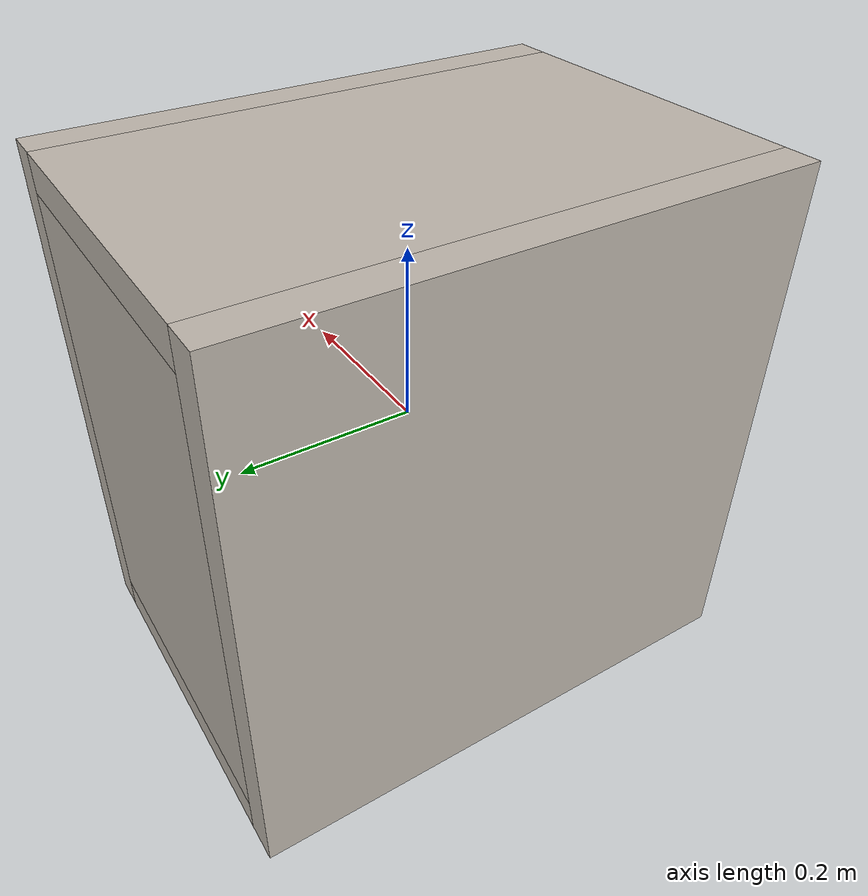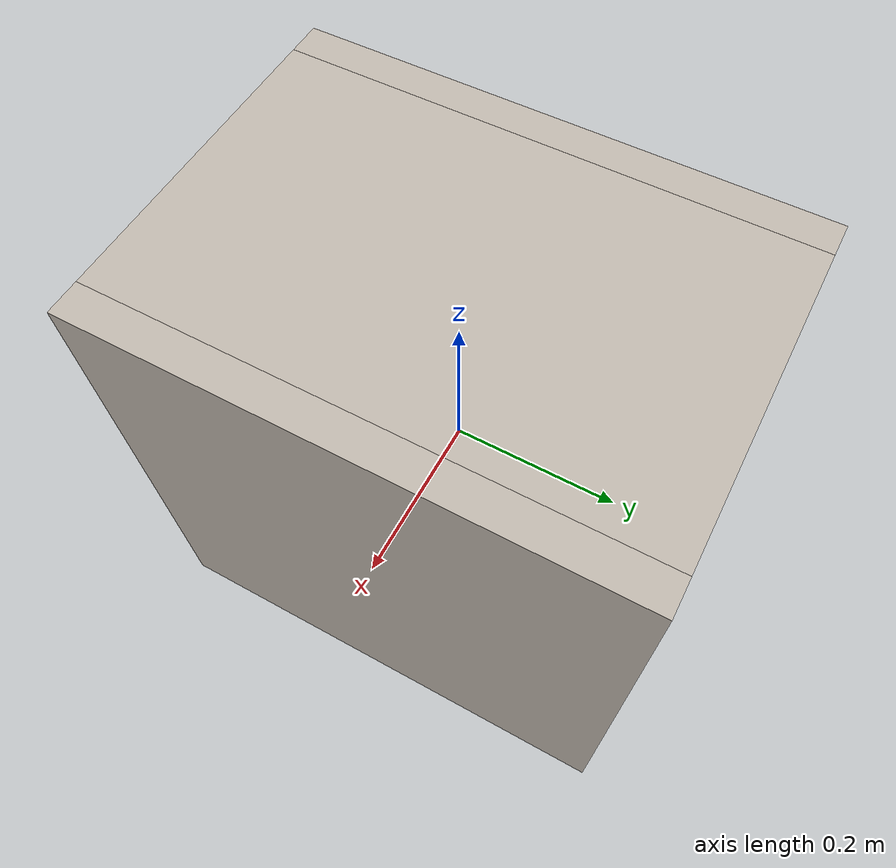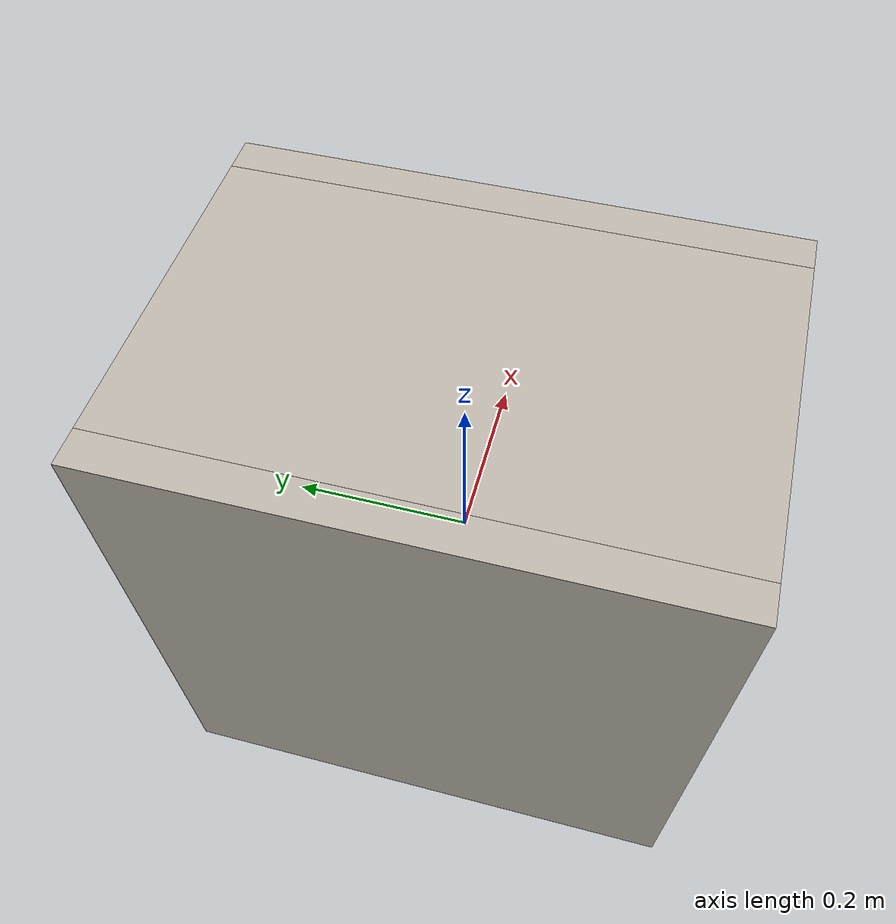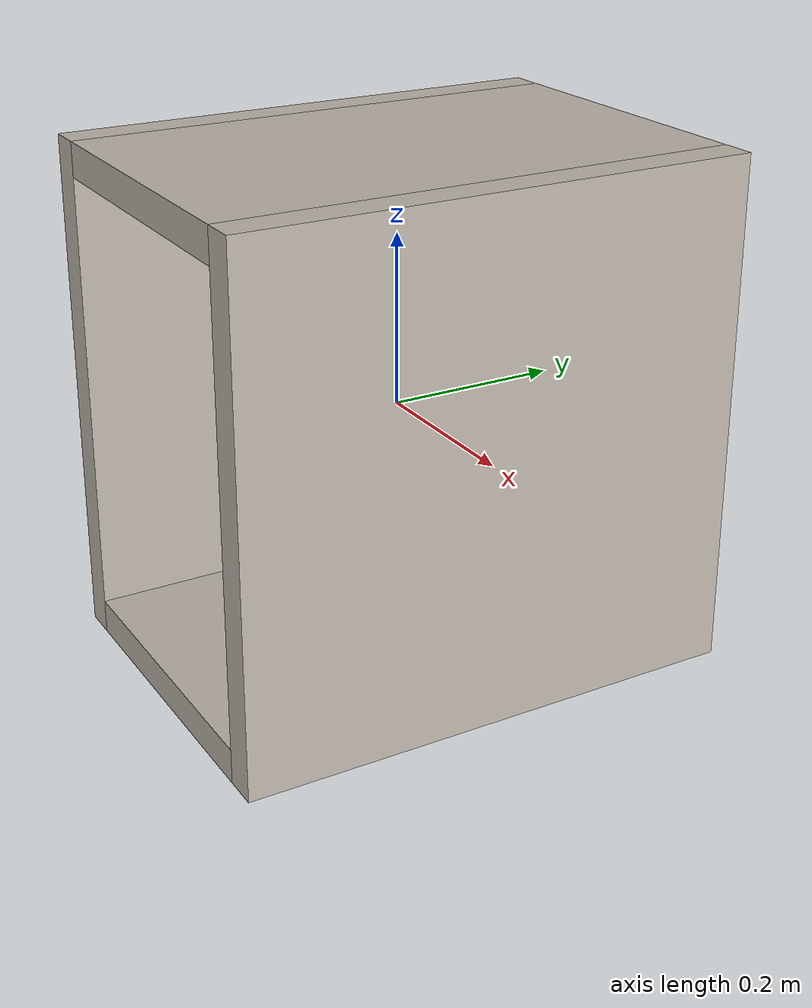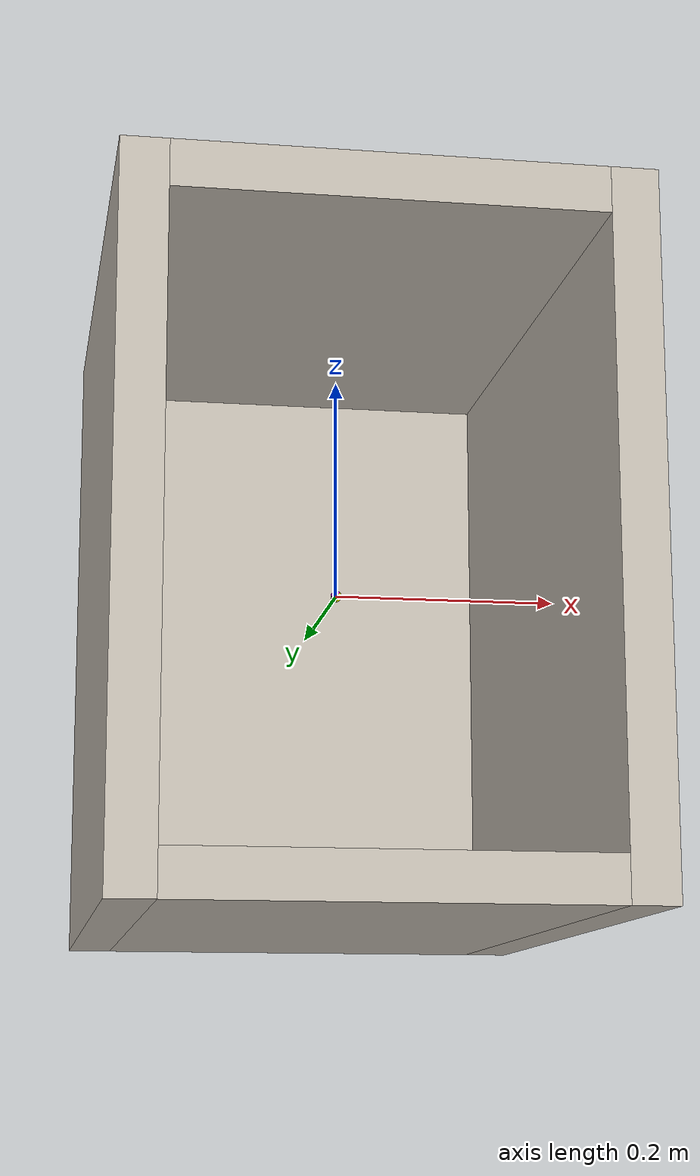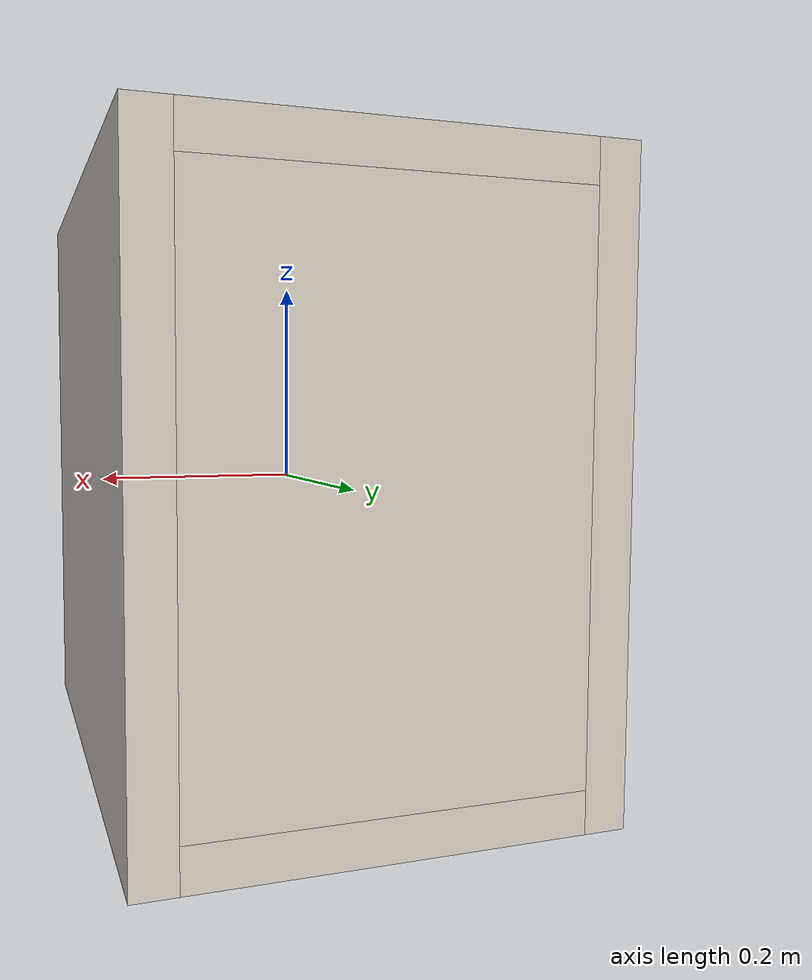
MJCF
<mujoco model="drawer">
  <compiler angle="radian"/>
  <asset>
    <texture file="../../textures/ceramic.png" type="cube" name="tex"/>
    <material name="mat" shininess="0.1" texture="tex"/>
  </asset>
  <default>
    <default class="cab">
      <geom group="0" density="10"/>
    </default>
    <default class="region">
      <geom group="1" conaffinity="0" contype="0" rgba="0 1 0 0"/>
    </default>
  </default>
  <worldbody>
    <body>
      <body name="object">
        <geom pos="0.0 0 0.28" size="0.18 0.3 0.02" type="box" mass=".2" material="mat" class="cab" name="top"/>
        <geom pos="0.0 0 -0.28" size="0.18 0.3 0.02" type="box" mass=".2" material="mat" class="cab" name="bottom"/>
        <geom pos="0.0 0.28 0" size="0.18 0.02 0.26" type="box" mass=".2" material="mat" class="cab" name="back"/>
        <geom pos="0.20 0 0" size="0.02 0.3 0.3" type="box" mass=".2" material="mat" class="cab" name="right"/>
        <geom pos="-0.20 0 0" size="0.02 0.3 0.3" type="box" mass=".2" material="mat" class="cab" name="left"/>
        <body name="inner_box">
          <joint axis="0 1 0" type="slide" name="slidejoint" limited="true" range="-1.0 0" damping="10"/>
          <geom pos="0.0 0 -0.28" size="0.18 0.3 0.02" type="box" mass=".2" material="mat" class="cab" name="inner_bottom"/>
          <geom pos="0.0 0.28 0" size="0.18 0.02 0.26" type="box" mass=".2" material="mat" class="cab" name="inner_back"/>
          <geom pos="0.20 0 0" size="0.02 0.3 0.3" type="box" mass=".2" material="mat" class="cab" name="inner_right"/>
          <geom pos="-0.20 0 0" size="0.02 0.3 0.3" type="box" mass=".2" material="mat" class="cab" name="inner_left"/>
          <!-- interior bounding box points -->
          <geom class="region" name="reg_int" type="box" pos="0.0 0.0 0.0" size="0.0001 0.0001 0.0001"/>
          <site rgba="0.5 0.5 0.5 1" size="0.005" pos="-0.00001 -0.00001 -0.00001" name="int_p0"/>
          <site rgba="1 1 0 1" size="0.005" pos="0.00001 -0.00001 -0.00001" name="int_px"/>
          <site rgba="0 1 1 1" size="0.005" pos="-0.00001 0.00001 -0.00001" name="int_py"/>
          <site rgba="1 0 1 1" size="0.005" pos="-0.00001 -0.00001 0.00001" name="int_pz"/>
        </body>
        <!-- exterior bounding box points -->
        <geom class="region" name="reg_main" type="box" pos="0.0 0.0 0.0" size="0.0001 0.0001 0.0001"/>
        <site rgba="0 0 0 1" size="0.005" pos="0 0 0" name="ext_p0"/>
        <site rgba="1 0 0 1" size="0.005" pos="0 0 0" name="ext_px"/>
        <site rgba="0 1 0 1" size="0.005" pos="0 0 0" name="ext_py"/>
        <site rgba="0 0 1 1" size="0.005" pos="0 0 0" name="ext_pz"/>
      </body>
    </body>
  </worldbody>
</mujoco>
